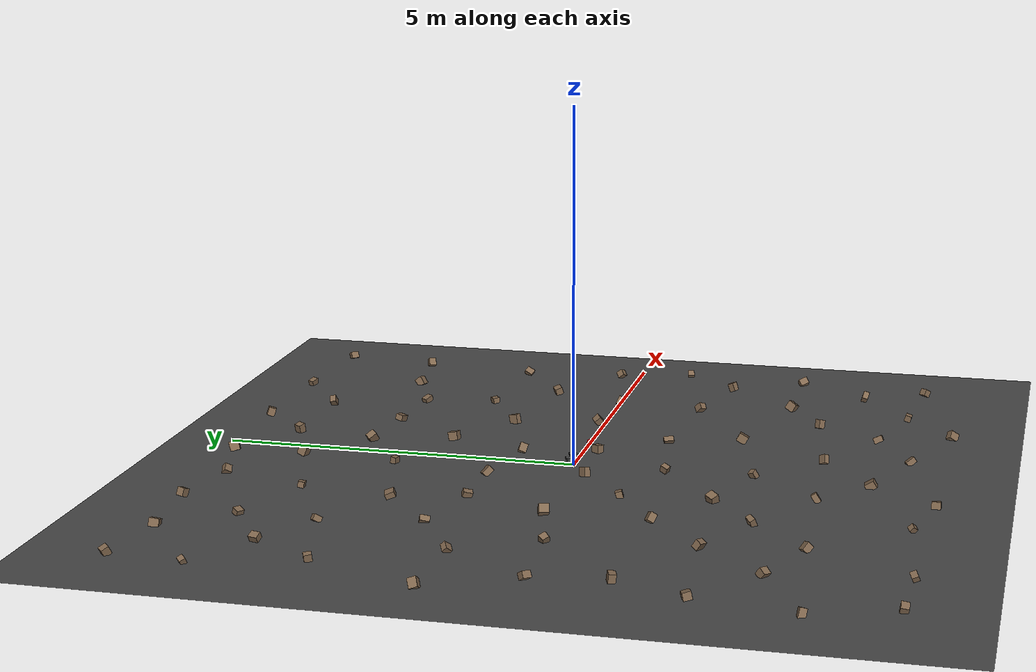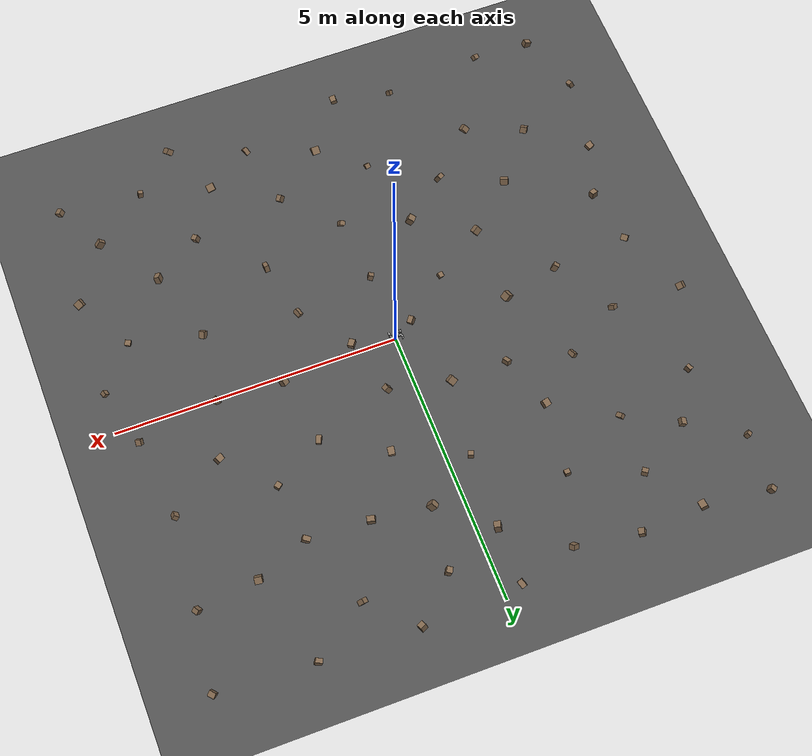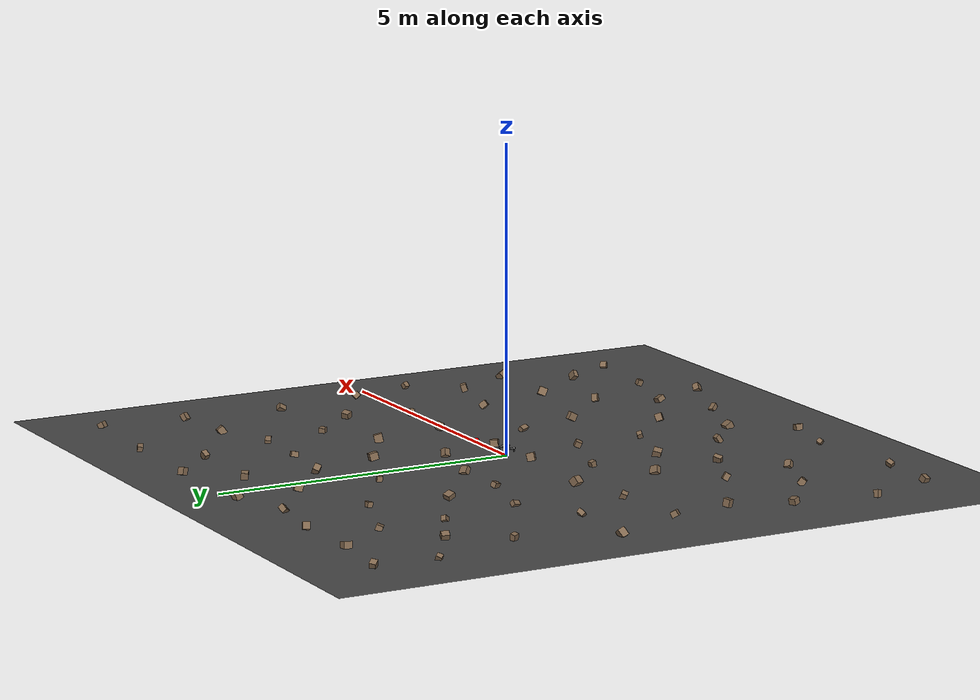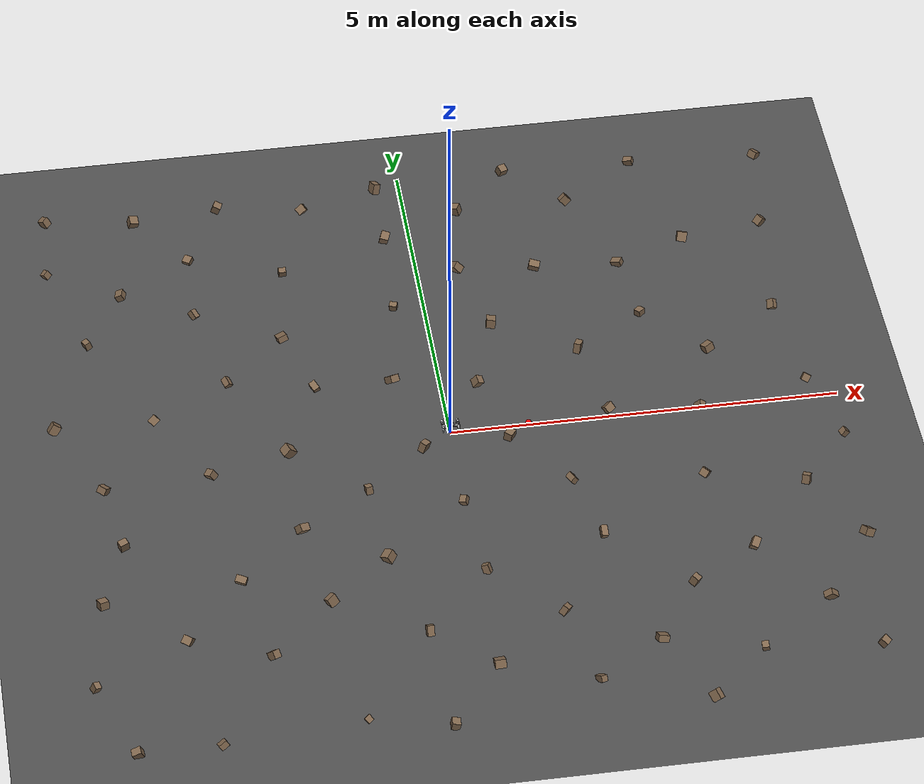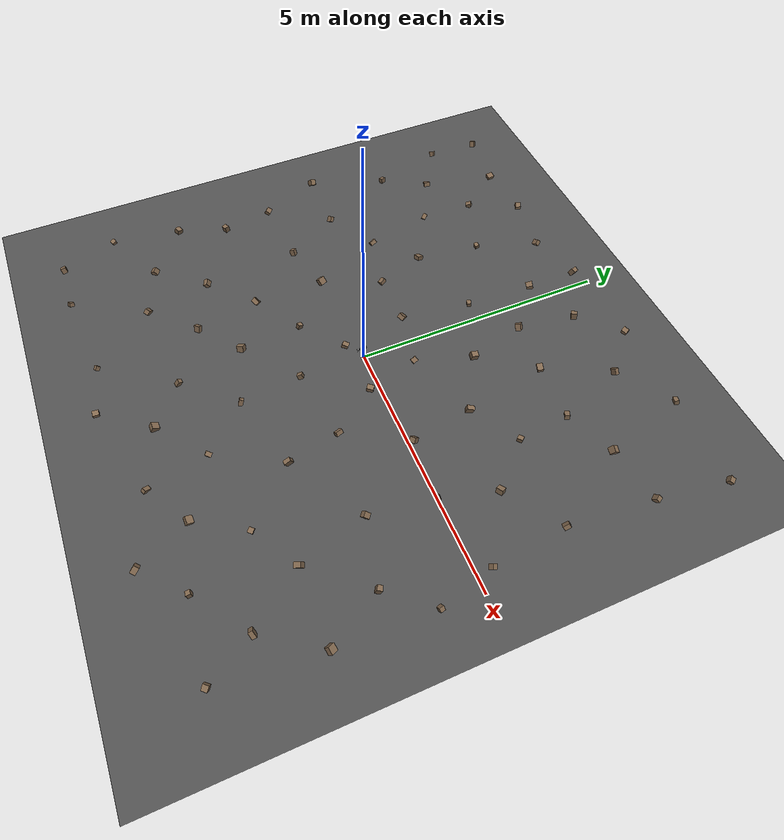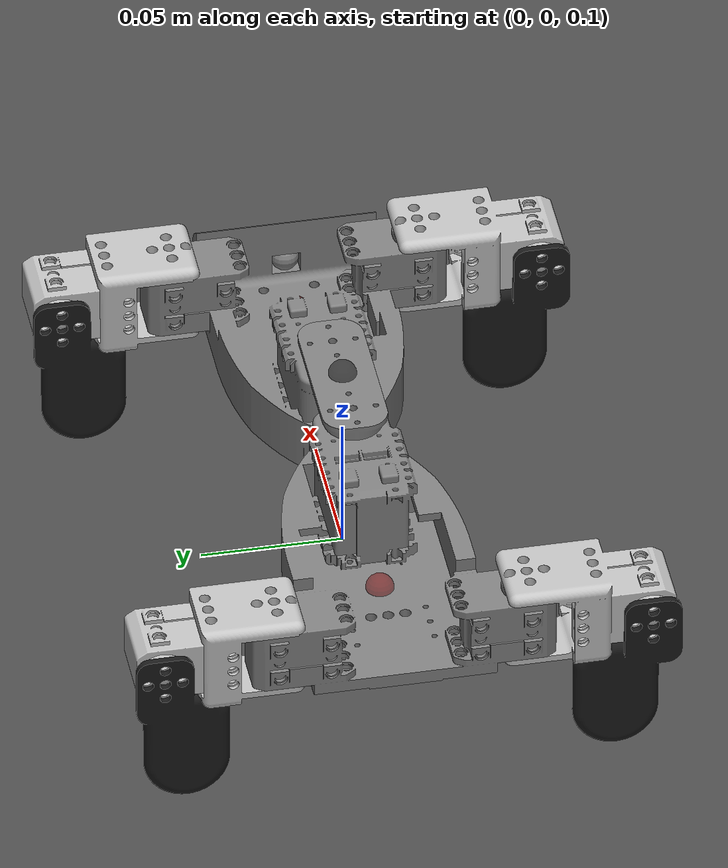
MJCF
<?xml version='1.0' encoding='utf-8'?>
<mujoco model="salamander_description">
  <include file="C:\Users\kevin\college_classes\SophomoreSpring\MiniRO\mujoco_box\assets\experiments\setup\../terrain_models\boulder_field_terrain.xml" /><compiler angle="radian" />
  <option solver="Newton" tolerance="1e-6" integrator="implicitfast" gravity="0 0 -9.81" />
  <include file="act2.xml" />

  <visual>
    <rgba haze="0.15 0.25 0.35 1" />
    <quality shadowsize="4096" />
    <map stiffness="700" shadowscale="0.5" fogstart="1" fogend="15" zfar="40" haze="1" />
  </visual>

  <asset>

    <texture type="skybox" builtin="gradient" rgb1="0.3 0.5 0.7" rgb2="0 0 0" width="512" height="512" />
    <texture name="texplane" type="2d" builtin="checker" rgb1=".2 .3 .4" rgb2=".1 0.15 0.2" width="512" height="512" mark="cross" markrgb=".8 .8 .8" />
    <material name="matplane" reflectance="0.3" texture="texplane" texrepeat="10 10" texuniform="true" />
    <material name="slope_mat" reflectance="0.3" rgba="1 1 0 .25" />

  <mesh file="C:\Users\kevin\college_classes\SophomoreSpring\MiniRO\mujoco_box\assets\experiments\setup\..\model_assets\salamander\meshes\body_front_link.STL" name="body_front_link" /><mesh file="C:\Users\kevin\college_classes\SophomoreSpring\MiniRO\mujoco_box\assets\experiments\setup\..\model_assets\salamander\meshes\body_rear_link.STL" name="body_rear_link" /><mesh file="C:\Users\kevin\college_classes\SophomoreSpring\MiniRO\mujoco_box\assets\experiments\setup\..\model_assets\salamander\meshes\dummy_base_link.STL" name="dummy_base_link" /><mesh file="C:\Users\kevin\college_classes\SophomoreSpring\MiniRO\mujoco_box\assets\experiments\setup\..\model_assets\salamander\meshes\leg1_link.STL" name="leg1_link" /><mesh file="C:\Users\kevin\college_classes\SophomoreSpring\MiniRO\mujoco_box\assets\experiments\setup\..\model_assets\salamander\meshes\leg2_link.STL" name="leg2_link" /><mesh file="C:\Users\kevin\college_classes\SophomoreSpring\MiniRO\mujoco_box\assets\experiments\setup\..\model_assets\salamander\meshes\leg3_link.STL" name="leg3_link" /><mesh file="C:\Users\kevin\college_classes\SophomoreSpring\MiniRO\mujoco_box\assets\experiments\setup\..\model_assets\salamander\meshes\leg4_link.STL" name="leg4_link" /><mesh file="C:\Users\kevin\college_classes\SophomoreSpring\MiniRO\mujoco_box\assets\experiments\setup\..\model_assets\salamander\meshes\shoulder1_link.STL" name="shoulder1_link" /><mesh file="C:\Users\kevin\college_classes\SophomoreSpring\MiniRO\mujoco_box\assets\experiments\setup\..\model_assets\salamander\meshes\shoulder2_link.STL" name="shoulder2_link" /><mesh file="C:\Users\kevin\college_classes\SophomoreSpring\MiniRO\mujoco_box\assets\experiments\setup\..\model_assets\salamander\meshes\shoulder3_link.STL" name="shoulder3_link" /><mesh file="C:\Users\kevin\college_classes\SophomoreSpring\MiniRO\mujoco_box\assets\experiments\setup\..\model_assets\salamander\meshes\shoulder4_link.STL" name="shoulder4_link" /></asset>

  <worldbody>
    <body name="ball" pos="1 0 .04">
      <geom type="sphere" size=".04" rgba="1 0 0 1" />
    </body>
    <light diffuse=".4 .4 .4" specular="0.1 0.1 0.1" pos="0 0 2.0" dir="0 0 -1" castshadow="false" />
    <light directional="true" diffuse=".8 .8 .8" specular="0.2 0.2 0.2" pos="0 0 4" dir="0 0 -1" />
    <geom name="ground" type="plane" size="0 0 1" pos="0 0 0" quat="1 0 0 0" material="matplane" condim="1" />

    <body name="body_rear_link" pos="0 0 0.0856">
      <geom pos="0 0 0.0856" quat="1 0 0 0" type="mesh" mesh="body_rear_link" />
      <joint name="fall" type="free" pos="0 0 0" axis="0 0 1" />
      <site name="torso_sensors" pos="-0.0682 0 .048" rgba="0.5 0 0 .5" />
      <body name="shoulder3_link" pos="-0.10533 0.043967 0.0784">
        <geom type="mesh" rgba="0.75294 0.75294 0.75294 1" mesh="shoulder3_link" />
        <inertial pos="-0.00035612 0.027895 -0.015524" quat="0.830241 0.554769 0.0182893 0.0509566" mass="0.022828" diaginertia="3.78438e-06 3.41587e-06 3.14145e-06" />
        <joint name="shoulder3_joint" type="hinge" pos="0 0 0" axis="0 0 1" range="-1.4 1.4" actuatorfrcrange="-0.39 0.39" frictionloss="0.1" />
        <body name="leg3_link" pos="-0.0174 0.041 -0.0164">
          <inertial pos="0.015303 -0.0075022 -0.031486" quat="0.991718 -0.121381 -0.0411625 0.00821591" mass="0.01174" diaginertia="4.05823e-06 3.86047e-06 1.0964e-06" />
          <joint name="leg3_joint" type="hinge" pos="0 0 0" axis="1 0 0" range="0 1.6" actuatorfrcrange="-0.39 0.39" frictionloss="0.1" />
          <geom type="mesh" rgba="0.10196 0.10196 0.10196 1" mesh="leg3_link" />
        </body>
      </body>
      <body name="shoulder4_link" pos="-0.10533 -0.044033 0.0784">
        <inertial pos="-0.00035261 -0.027895 -0.015524" quat="0.55469 0.830308 -0.0504036 -0.0191768" mass="0.022828" diaginertia="3.78439e-06 3.41596e-06 3.14135e-06" />
        <joint name="shoulder4_joint" type="hinge" pos="0 0 0" axis="0 0 1" range="-1.4 1.4" actuatorfrcrange="-0.39 0.39" frictionloss="0.1" />
        <geom type="mesh" rgba="0.75294 0.75294 0.75294 1" mesh="shoulder4_link" />
        <body name="leg4_link" pos="-0.0174 -0.041 -0.0164">
          <inertial pos="0.015303 0.0075097 -0.031486" quat="0.991713 0.121232 -0.0407594 -0.0121008" mass="0.01174" diaginertia="4.05702e-06 3.85955e-06 1.09592e-06" />
          <joint name="leg4_joint" type="hinge" pos="0 0 0" axis="1 0 0" range="-1.6 0" actuatorfrcrange="-0.39 0.39" frictionloss="0.1" />
          <geom type="mesh" rgba="0.10196 0.10196 0.10196 1" mesh="leg4_link" />
        </body>
      </body>
      <body name="body_front_link" pos="0.0185 0 0.0881">
        <site name="spinal_sensors" pos="-0.0182 0 0" rgba="0 0 0 .5" />
        <site name="front_sensors" pos="0.0682 0 -.04" rgba="0.5 0 0 .5" />
        <inertial pos="0.056805 2.3159e-05 -0.033606" quat="0.4638 0.4638 -0.53375 0.53375" mass="0.081874" diaginertia="3.73585e-05 2.58825e-05 1.9334e-05" />
        <joint name="spinal_joint" type="hinge" pos="0 0 0" axis="0 0 1" range="-1.5707 1.5707" actuatorfrcrange="-1.52 1.52" frictionloss="0.5" />
        <geom type="mesh" mesh="body_front_link" />
        <site name="tip_sensors" pos="0.09 0 -0.033" />
        <body name="shoulder1_link" pos="0.073327 0.044033 -0.0097">
          <inertial pos="-0.00035612 0.027895 -0.015524" quat="0.830241 0.554769 0.0182893 0.0509566" mass="0.022828" diaginertia="3.78438e-06 3.41587e-06 3.14145e-06" />
          <joint name="shoulder1_joint" type="hinge" pos="0 0 0" axis="0 0 1" range="-1.4 1.4" actuatorfrcrange="-0.39 0.39" frictionloss="0.1" />
          <geom type="mesh" rgba="0.75294 0.75294 0.75294 1" mesh="shoulder1_link" />
          <body name="leg1_link" pos="-0.0174 0.041 -0.0164">
            <inertial pos="0.015303 -0.0075022 -0.031486" quat="0.991718 -0.121381 -0.0411625 0.00821591" mass="0.01174" diaginertia="4.05823e-06 3.86047e-06 1.0964e-06" />
            <joint name="leg1_joint" type="hinge" pos="0 0 0" axis="1 0 0" range="0 1.6" actuatorfrcrange="-0.39 0.39" frictionloss="0.1" />
            <geom type="mesh" rgba="0.10196 0.10196 0.10196 1" mesh="leg1_link" />
          </body>
        </body>
        <body name="shoulder2_link" pos="0.073327 -0.043967 -0.0097">
          <inertial pos="-0.00035261 -0.027895 -0.015524" quat="0.55469 0.830308 -0.0504036 -0.0191768" mass="0.022828" diaginertia="3.78439e-06 3.41596e-06 3.14135e-06" />
          <joint name="shoulder2_joint" type="hinge" pos="0 0 0" axis="0 0 1" range="-1.4 1.4" actuatorfrcrange="-0.39 0.39" frictionloss="0.1" />
          <geom type="mesh" rgba="0.75294 0.75294 0.75294 1" mesh="shoulder2_link" />
          <body name="leg2_link" pos="-0.0174 -0.041 -0.0164">
            <inertial pos="0.015303 0.0075097 -0.031486" quat="0.991713 0.121232 -0.0407594 -0.0121008" mass="0.01174" diaginertia="4.05702e-06 3.85955e-06 1.09592e-06" />
            <joint name="leg2_joint" type="hinge" pos="0 0 0" axis="1 0 0" range="-1.6 0" actuatorfrcrange="-0.39 0.39" frictionloss="0.1" />
            <geom type="mesh" rgba="0.10196 0.10196 0.10196 1" mesh="leg2_link" />
          </body>
        </body>
      </body>
    </body>

  </worldbody>

  <sensor>
    <velocimeter name="velocity" site="tip_sensors" />
    <framequat name="spinal_quat" objtype="site" objname="spinal_sensors" reftype="body" refname="body_rear_link" />
    <gyro name="torso_angular_velocity" site="torso_sensors" />
    <velocimeter name="torso_velocity" site="torso_sensors" />
    <velocimeter name="front_velocity" site="front_sensors" />
  </sensor>
</mujoco>

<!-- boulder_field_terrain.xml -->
<mujoco model="rocky_terrain_scene">
    <compiler angle="radian" inertiafromgeom="true" />
    <option timestep="0.002" gravity="0 0 -9.81" />

    <worldbody>
        <light name="sunlight" pos="5 5 5" dir="-1 -1 -1" diffuse="1 1 1" specular="0.5 0.5 0.5" ambient="0.5 0.5 0.5" />

        <geom name="ground_plane" type="plane" size="50 50 0.1" rgba="0.3 0.3 0.3 1" />

        <body name="rocky_terrain_body">

        <geom name="rock1" type="box" size="0.043853821801602785 0.060639639290208464 0.05602136349779619" pos="2.160647646629293 4.22456299904171 0.04987713242187566" quat="0.33927833288281617 0.10461920358835411 0.2084756053692005 0.3476268581596291" rgba="0.5 0.4 0.3 1" friction="0.7732341014625038 0.932433615481447 0.8072531281551533" /><geom name="rock2" type="box" size="0.05414276227779244 0.052384297007154475 0.05878092148138053" pos="2.05076199082574 0.10855953183192124 0.05681558277090658" quat="0.3434154641807505 0.03798896063504085 0.3357963751398389 0.2827992000443697" rgba="0.5 0.4 0.3 1" friction="0.8064512524133735 0.9984369287871199 0.8361095400639541" /><geom name="rock3" type="box" size="0.0685415117361759 0.05976650737385847 0.0509263758907643" pos="2.4792696112579895 -4.993542088926982 0.02962240915355816" quat="0.011250825472890452 0.31598145594362165 0.36628973997917724 0.30647797860431053" rgba="0.5 0.4 0.3 1" friction="0.870368892713995 0.9211217134250818 0.8045704804291002" /><geom name="rock4" type="box" size="0.04919458807518518 0.06566848922245452 0.05182634235422405" pos="-3.094651439417425 -0.33412643548178345 0.02249273805581889" quat="0.3649195467460633 0.3177877608119277 0.058776488225633014 0.25851620421637594" rgba="0.5 0.4 0.3 1" friction="0.8776599171507683 0.9240486269376021 0.9155458032251842" /><geom name="rock5" type="box" size="0.06910645207091379 0.06206259795184478 0.040859764806773974" pos="1.6120493780869518 -2.09438205962262 0.059142835238184366" quat="0.1745134324784194 0.3123558443510316 0.19886376187576862 0.31426696129478043" rgba="0.5 0.4 0.3 1" friction="0.8875460896439653 0.9683643109337081 0.9247647899947249" /><geom name="rock6" type="box" size="0.040486024868399285 0.04258509589261991 0.040593045308615905" pos="-1.6821775466429392 -4.772652370815496 0.03704874636612837" quat="0.39759976610018855 0.02958660714676698 0.3056951747511572 0.26711845200188733" rgba="0.5 0.4 0.3 1" friction="0.750664337221701 0.9843189574572352 0.9482790891771469" /><geom name="rock7" type="box" size="0.05382063278406617 0.05320089955565819 0.04421789421132908" pos="-2.9665552866807623 3.762082966086327 0.023988265847822425" quat="0.03511821385715542 0.20171705219706343 0.644896427061065 0.11826830688471625" rgba="0.5 0.4 0.3 1" friction="0.8145563965353889 0.9129223356900046 0.8699423597228008" /><geom name="rock8" type="box" size="0.041698312689840804 0.06187681845436866 0.049180563253098004" pos="4.50197460922886 1.7623944475023565 0.03610965124208783" quat="0.5523858532117744 0.1509866206044172 0.2511654473233008 0.04546207886050765" rgba="0.5 0.4 0.3 1" friction="0.7665580092726315 0.961492180210848 0.910334226964469" /><geom name="rock9" type="box" size="0.0699220073576851 0.041405529545056954 0.04048973588568107" pos="1.3849725406179934 -1.0665476967589171 0.02850455854957698" quat="0.2876641007089788 0.11622533423351832 0.20869463182343878 0.38741593323406415" rgba="0.5 0.4 0.3 1" friction="0.8844526266541806 0.9529029650674928 0.9323809829237759" /><geom name="rock10" type="box" size="0.06987162739846753 0.054243297526459754 0.06914668337433821" pos="0.0006672073603750661 -4.077906468031768 0.021014719449722837" quat="0.31732588421164504 0.17162479728444405 0.32068318372277854 0.19036613478113235" rgba="0.5 0.4 0.3 1" friction="0.8654801327783166 0.9089046377180435 0.941795425964826" /><geom name="rock11" type="box" size="0.05741629726269751 0.04563032079139399 0.06838338693803704" pos="-2.925971886694816 -2.262890252313973 0.05255163423298824" quat="0.37970986686914093 0.2045876339506456 0.3911451712982648 0.024557327881948615" rgba="0.5 0.4 0.3 1" friction="0.7658890887548487 0.9131293743378066 0.920028745295681" /><geom name="rock12" type="box" size="0.05476022738759206 0.062446404837481886 0.04913049483667202" pos="0.4681662375305855 0.8434080051460215 0.05442781904244423" quat="0.09713845293291536 0.32345541683290074 0.3222203145542713 0.2571858156799126" rgba="0.5 0.4 0.3 1" friction="0.8744808911753371 0.9791746583867476 0.8342695695818341" /><geom name="rock13" type="box" size="0.06216427440291437 0.041470091216600925 0.06960344685274189" pos="4.173517004681964 -3.570902427660351 0.05469259005042576" quat="0.245860169956722 0.02534346451327586 0.6283948787689216 0.10040148676108042" rgba="0.5 0.4 0.3 1" friction="0.8687504799151304 0.8733579237437841 0.8588576712582509" /><geom name="rock14" type="box" size="0.0512699794434396 0.048651965556602526 0.04508477300545788" pos="-0.020109137144366684 -1.2806085418793547 0.056191772615846125" quat="0.29767858706738254 0.3031305044605786 0.1095397277055546 0.2896511807664842" rgba="0.5 0.4 0.3 1" friction="0.7540437151575251 0.9427866286163602 0.8240594941813054" /><geom name="rock15" type="box" size="0.04610135827613138 0.052878036119748145 0.06025287598506379" pos="-1.3568468098545172 4.552923192567578 0.03357943882597714" quat="0.46098886477277545 0.04491516775978427 0.27355386614301447 0.2205421013244258" rgba="0.5 0.4 0.3 1" friction="0.8376527814096748 0.8539212245023116 0.8104458690843527" /><geom name="rock16" type="box" size="0.05692139015920557 0.052429471621167706 0.05891373202258214" pos="-4.642274759062742 -2.4124706338782365 0.04205061311577134" quat="0.22353316471990825 0.17956243904550284 0.3346278580855585 0.2622765381490305" rgba="0.5 0.4 0.3 1" friction="0.7976079571368718 0.9123927175624597 0.9099276214587213" /><geom name="rock17" type="box" size="0.06425292063937875 0.05811647679134116 0.06437708458418474" pos="3.583882190537869 3.2749578401085984 0.02520872829612538" quat="0.04907793277532361 0.07318435623800035 0.21491704144219456 0.6628206695444815" rgba="0.5 0.4 0.3 1" friction="0.843487596214182 0.9659729948584901 0.8559036112697449" /><geom name="rock18" type="box" size="0.06918782414349939 0.060056466542846604 0.05627354615294223" pos="-3.6130800722350376 4.635659346450526 0.023179852386012875" quat="0.4209665230542065 0.08879149936202878 0.03354984685333554 0.4566921307304292" rgba="0.5 0.4 0.3 1" friction="0.799808504233931 0.9281424000541973 0.929739719978319" /><geom name="rock19" type="box" size="0.04757484851928375 0.04502146103114158 0.04319011418420701" pos="3.212746945934734 -4.301929292802468 0.05377826018909457" quat="0.46623903872672584 0.07816512851336187 0.40032070252568414 0.05527513023422823" rgba="0.5 0.4 0.3 1" friction="0.8143005734616778 0.8569104694672407 0.9063056861106036" /><geom name="rock20" type="box" size="0.04208627349383286 0.05975575006155006 0.041402021086536504" pos="-2.9988991360452752 2.684150490569559 0.024996304046483904" quat="0.5461842919349361 0.1290268294385875 0.13164543333586684 0.19314344529060948" rgba="0.5 0.4 0.3 1" friction="0.8624072858378814 0.9353521133097273 0.9288581830230243" /><geom name="rock21" type="box" size="0.043444989383793695 0.0402204859084211 0.055806516709261476" pos="-3.4403993022371235 -4.9402077560502615 0.05242208878626915" quat="0.3195039242712905 0.10077373669353153 0.26612706790135726 0.3135952711338207" rgba="0.5 0.4 0.3 1" friction="0.7643132296119123 0.9356353957535227 0.8407873425155308" /><geom name="rock22" type="box" size="0.05397139693017408 0.04625640176752379 0.06116713676019947" pos="-4.456430230833352 -0.43180728157957393 0.05013198256310543" quat="0.3717254425768542 0.31730554532919913 0.25666275224277 0.05430625985117664" rgba="0.5 0.4 0.3 1" friction="0.8684502806229368 0.9125075963179681 0.9447355899389647" /><geom name="rock23" type="box" size="0.06610784462450046 0.04044640036898337 0.041696938739947044" pos="-2.7122846730920935 1.33148873646247 0.023241629612237996" quat="0.27547245392347025 0.1692281159442585 0.13539006370545797 0.4199093664268132" rgba="0.5 0.4 0.3 1" friction="0.7531879167239197 0.8748554129312618 0.9339779050802022" /><geom name="rock24" type="box" size="0.04151239440213277 0.052389566137122714 0.05195952274872104" pos="-4.432040365850835 2.292670843129903 0.04110517051725393" quat="0.42365821428656636 0.39035574711070997 0.039382572512440525 0.1466034660902831" rgba="0.5 0.4 0.3 1" friction="0.7872519295524801 0.885295114064607 0.9268474867761347" /><geom name="rock25" type="box" size="0.04833719080957537 0.06251387886829207 0.0577106475225786" pos="-4.299865466847061 -1.4510408873676548 0.055966059019377165" quat="0.19694946831473747 0.20561637883373873 0.269217427376567 0.3282167254749567" rgba="0.5 0.4 0.3 1" friction="0.8327677915406425 0.8523065585963219 0.9206225226632636" /><geom name="rock26" type="box" size="0.05348055179577833 0.046076243160331716 0.04454467998363869" pos="-1.1694424987783658 -0.8869512941646605 0.025226738670394173" quat="0.019848281037418387 0.42834022798906984 0.10291252879500151 0.4488989621785103" rgba="0.5 0.4 0.3 1" friction="0.8655549526947047 0.9060387484384596 0.8088673177034804" /><geom name="rock27" type="box" size="0.04286253500966034 0.061096512866998215 0.04452730688262134" pos="3.1461779478444853 4.901935186749041 0.03460981415758363" quat="0.04846405197160055 0.5179579775835065 0.3505588799420009 0.083019090502892" rgba="0.5 0.4 0.3 1" friction="0.7717678080850532 0.9613006766203365 0.9019915263328471" /><geom name="rock28" type="box" size="0.04098665269331823 0.0676940208605297 0.06491076744888041" pos="-1.873194003761316 -2.752176881710102 0.03282671155813744" quat="0.27122620948457676 0.07551099795618926 0.3225072000297369 0.33075559252949704" rgba="0.5 0.4 0.3 1" friction="0.850140296276624 0.9115121252664802 0.8481029891052373" /><geom name="rock29" type="box" size="0.057606812199961346 0.06913458405098855 0.058604823079758686" pos="-4.977832975365658 0.7808560715492519 0.028612476796646805" quat="0.21614697354513218 0.28208531303618795 0.38263197273799854 0.11913574068068136" rgba="0.5 0.4 0.3 1" friction="0.8818267209871242 0.8503194860533388 0.8973237588750845" /><geom name="rock30" type="box" size="0.04008120702615002 0.055391632373745586 0.05713197846000726" pos="-3.710133546171004 0.7497291959244325 0.03406654945745188" quat="0.4085222709462414 0.029440568177505358 0.28496289727427965 0.2770742636019736" rgba="0.5 0.4 0.3 1" friction="0.8218960009017762 0.8807596186675748 0.8021288391331125" /><geom name="rock31" type="box" size="0.06683420306858576 0.06495277190276279 0.05559468720540851" pos="-0.33522585656821224 3.804696381631123 0.048150517543637486" quat="0.3844465156002158 0.1437922225645004 0.4676942678336071 0.004066994001676769" rgba="0.5 0.4 0.3 1" friction="0.8883006698307621 0.9034591928828531 0.8924805420673946" /><geom name="rock32" type="box" size="0.040588482200641 0.04552563169087353 0.06337514429619354" pos="3.219813946603143 0.021055697852967015 0.020939156660605224" quat="0.38356223626564745 0.18841079830636684 0.05370499629105529 0.3743219691369304" rgba="0.5 0.4 0.3 1" friction="0.8899513219553012 0.8759645516106508 0.8264799055735439" /><geom name="rock33" type="box" size="0.05315541551585743 0.04066421181499609 0.04848569887976946" pos="2.7616416742039194 1.8620227667549347 0.05037187471220835" quat="0.39011786455943187 0.34725716432826575 0.12351643020275802 0.13910854090954433" rgba="0.5 0.4 0.3 1" friction="0.8201176986015216 0.8520052439737107 0.9331637278652843" /><geom name="rock34" type="box" size="0.06434307278831305 0.06984423445271026 0.0528081898932445" pos="0.5212388227036406 3.0809668481150236 0.04315793245543928" quat="0.2849135378237753 0.005568262453588341 0.3249265188699143 0.38459168085272205" rgba="0.5 0.4 0.3 1" friction="0.887364618718427 0.8507396488309678 0.8120036612080923" /><geom name="rock35" type="box" size="0.04959598886147196 0.06150775021977083 0.04800027345334622" pos="2.5780548539047787 -3.079776803249424 0.05871416562979438" quat="0.07034075052551786 0.2168635063281712 0.3663802244135367 0.34641551873277426" rgba="0.5 0.4 0.3 1" friction="0.7581080900132856 0.9801025706786124 0.8123560441859166" /><geom name="rock36" type="box" size="0.06780602911521243 0.06392883396614985 0.06818973477702607" pos="-2.0843226615673913 -0.0800690744859045 0.05307570034356701" quat="0.11175658768164762 0.29180881202125675 0.4116033059725316 0.18483129432456397" rgba="0.5 0.4 0.3 1" friction="0.8594668217870844 0.8713617196617812 0.8641433431863492" /><geom name="rock37" type="box" size="0.04793780795409209 0.06229579964635561 0.050152038506858176" pos="4.2903762700245505 -1.529316709245272 0.054706989182096946" quat="0.35215288738171996 0.26638568851811184 0.2371004371577054 0.14436098694246285" rgba="0.5 0.4 0.3 1" friction="0.7685140148478983 0.8537495207707583 0.9103858754124721" /><geom name="rock38" type="box" size="0.05571086395487056 0.06573192953631937 0.05037981185516763" pos="0.688857797606973 4.232988497741207 0.04837507643114479" quat="0.3483422157363562 0.2854611423829209 0.1503546028878523 0.21584203899287052" rgba="0.5 0.4 0.3 1" friction="0.7861964507152234 0.9927978147556851 0.9298694011155333" /><geom name="rock39" type="box" size="0.06972089324880408 0.043352087194856934 0.056526838683066453" pos="1.5448118533450064 2.9649721037293837 0.05143125671449078" quat="0.025315835131536516 0.10363524550390282 0.3894717498408637 0.48157716952369706" rgba="0.5 0.4 0.3 1" friction="0.7622991497557465 0.9974795111463732 0.8572965455752858" /><geom name="rock40" type="box" size="0.049108226700639586 0.04248861070720369 0.05727989886290134" pos="-0.40146390837108026 2.4554316741822575 0.020088057767641804" quat="0.004174644231084061 0.13717524695797087 0.8117316215149949 0.04691848729595002" rgba="0.5 0.4 0.3 1" friction="0.821952777576652 0.8901158519167647 0.9226619975210343" /><geom name="rock41" type="box" size="0.06873579685718961 0.04602258576348401 0.06689493530916336" pos="-0.6068211268307087 1.0739825289098457 0.028484835175909294" quat="0.27150066184105787 0.07252873482479498 0.43747642298280426 0.218494180351343" rgba="0.5 0.4 0.3 1" friction="0.7985636817880842 0.8769219870788406 0.8690170800285901" /><geom name="rock42" type="box" size="0.06593688259088719 0.040408520574272605 0.0645230141885921" pos="-1.9203230218346046 2.041901360751826 0.05827539763920678" quat="0.29066659447483945 0.13899619551445794 0.29405326483668315 0.27628394517401944" rgba="0.5 0.4 0.3 1" friction="0.8684505415645204 0.8691795215382708 0.8325814997219092" /><geom name="rock43" type="box" size="0.04309465463233214 0.04185674808781738 0.0484477891425127" pos="-1.7618510471646678 3.327530213661202 0.04424105992691571" quat="0.22005336435955147 0.27045782918839645 0.243382619765182 0.26610618668687" rgba="0.5 0.4 0.3 1" friction="0.8347275141794102 0.9900509372038321 0.9308358179921521" /><geom name="rock44" type="box" size="0.053592320483041245 0.04895707676598286 0.052436289445246934" pos="4.653878677186098 -4.436598679480764 0.04626785682018926" quat="0.25461557330133316 0.43093237011528396 0.2055544154934473 0.10889764108993556" rgba="0.5 0.4 0.3 1" friction="0.8032801822299798 0.9988320032198056 0.8393183748471706" /><geom name="rock45" type="box" size="0.040588354004436535 0.046363803820928425 0.04827457189301959" pos="-4.846274253490652 3.7522041483867277 0.021311737068022696" quat="0.17350964720460574 0.24029439761885826 0.5429936966148788 0.04320225856165703" rgba="0.5 0.4 0.3 1" friction="0.7526093622101787 0.9589423737115419 0.9458365779697929" /><geom name="rock46" type="box" size="0.04731499449705898 0.0646548063931353 0.041284584255872614" pos="-4.850937437198772 -3.7819704265021503 0.023296216705572883" quat="0.13311207688522045 0.27404150049176546 0.30858724222663225 0.28425918039638187" rgba="0.5 0.4 0.3 1" friction="0.7826030267409304 0.92985704342723 0.8283485851752442" /><geom name="rock47" type="box" size="0.062134667519900155 0.05013672153917219 0.052549513624792404" pos="3.047711077120125 -1.2360311364762797 0.0516503778491728" quat="0.34258967764863885 0.3146046960848553 0.32624162941035506 0.01656399685615076" rgba="0.5 0.4 0.3 1" friction="0.7827803690358865 0.9863583489424919 0.8942836195207027" /><geom name="rock48" type="box" size="0.042013901763014574 0.06187727891295771 0.04530577075962564" pos="0.08478534812617866 -2.482080190522601 0.022992705590609935" quat="0.3951732184978289 0.19661965268611212 0.20261904871250494 0.20558808010355406" rgba="0.5 0.4 0.3 1" friction="0.7520303447988993 0.912969706356342 0.8035403145998264" /><geom name="rock49" type="box" size="0.05402099925496294 0.06035346993960691 0.044830289409966015" pos="4.6639511206555735 3.424777963458707 0.0391984100129789" quat="0.09276504384971385 0.25613765858026655 0.43191897222684167 0.21917832534317802" rgba="0.5 0.4 0.3 1" friction="0.8341289503023337 0.9389295460587728 0.8051867523619716" /><geom name="rock50" type="box" size="0.06946448931390609 0.0598889774997863 0.058780819978579715" pos="0.8118502250847071 1.9449487289404468 0.055025623200024645" quat="0.28010754070581395 0.2567196593335018 0.26924056399873586 0.19393223596194833" rgba="0.5 0.4 0.3 1" friction="0.8931386360230775 0.8723078071327139 0.8196809183484478" /><geom name="rock51" type="box" size="0.05355121758303415 0.05765458740005743 0.06031497865625972" pos="-3.67875843607841 -3.167236282167376 0.028125304543338777" quat="0.2606043902095395 0.406637183053794 0.06261462746482112 0.2701437992718454" rgba="0.5 0.4 0.3 1" friction="0.7855987001489422 0.9362118960881034 0.9104861215258648" /><geom name="rock52" type="box" size="0.05740575721739438 0.061138954010236016 0.04173129703731882" pos="0.9245809515043657 -3.3362649784986975 0.045495152176695426" quat="0.31366690701744493 0.369706955552216 0.25685082687065947 0.059775310559679586" rgba="0.5 0.4 0.3 1" friction="0.8351325533177777 0.89631397921113 0.9276056808587386" /><geom name="rock53" type="box" size="0.05040179753464377 0.06149066353970949 0.05284910088603449" pos="-2.674340603009422 -3.5552781515427 0.02919608953429126" quat="0.026401002820654308 0.3396699721209056 0.2819328933533553 0.35199613170508476" rgba="0.5 0.4 0.3 1" friction="0.8044423214782065 0.9241971946258616 0.8461313117307457" /><geom name="rock54" type="box" size="0.05182039879619997 0.047615675878748036 0.049082862380822566" pos="4.656212641368533 0.3045451714128635 0.049131153524902146" quat="0.29910709572353195 0.2723949790192446 0.3592852865968565 0.06921263866036702" rgba="0.5 0.4 0.3 1" friction="0.8041340340173031 0.9001623893186523 0.8888741901804225" /><geom name="rock55" type="box" size="0.04816103393506783 0.06099967335144644 0.06886225175620944" pos="-2.077573672854042 -1.4896489744199828 0.05882033224337699" quat="0.07116926905714145 0.3285709546463382 0.29861137873689625 0.30164839755962414" rgba="0.5 0.4 0.3 1" friction="0.8461099352183679 0.8771024494830666 0.827391388687716" /><geom name="rock56" type="box" size="0.04965556702820183 0.049906750372201464 0.06046732765624903" pos="4.86151509728794 4.8051290763662 0.022605340607351625" quat="0.4012013470001954 0.3380609480371407 0.22703210904995785 0.033705595912706054" rgba="0.5 0.4 0.3 1" friction="0.865145931426697 0.9703340303669232 0.875428697464218" /><geom name="rock57" type="box" size="0.06439930659691825 0.051877949440492184 0.06705940460061706" pos="4.849877593517203 -2.5482148522798154 0.04047971134934558" quat="0.20269116849345964 0.2131669325137172 0.42249242065492526 0.16164947833789783" rgba="0.5 0.4 0.3 1" friction="0.8909263883676917 0.9657840139722074 0.8994570964660376" /><geom name="rock58" type="box" size="0.054656899505687744 0.05287715035692554 0.06449913862499577" pos="3.512712286843472 1.0600137471571163 0.048130486566859344" quat="0.2532675750456367 0.11892903850728621 0.32079354993970816 0.30700983650736896" rgba="0.5 0.4 0.3 1" friction="0.8642690747114788 0.995225456120876 0.8555627335915064" /><geom name="rock59" type="box" size="0.04196836816558652 0.04078087125906209 0.06797571783963545" pos="1.166452466724622 -4.508965660113878 0.022478950943289427" quat="0.5361799110130888 0.2726640671327487 0.10237369360803035 0.08878232824613212" rgba="0.5 0.4 0.3 1" friction="0.7799973246145879 0.87548249691919 0.8188000189298384" /><geom name="rock60" type="box" size="0.06952330433260497 0.06963009525872194 0.04408399105099779" pos="1.8583016855294057 1.3187839067723282 0.04415025137027595" quat="0.32138264104495917 0.2851622991948261 0.238930427099651 0.15452463266056368" rgba="0.5 0.4 0.3 1" friction="0.8327694025030781 0.8922951397811496 0.890979857552688" /><geom name="rock61" type="box" size="0.06697122878397879 0.041893039814036116 0.04484394370508772" pos="-0.7572038155456582 -3.4349736551862664 0.03694745905669562" quat="0.08281082709834577 0.3987692509504842 0.14810443553700423 0.37031548641416573" rgba="0.5 0.4 0.3 1" friction="0.835238897158118 0.9391046784684346 0.82833451147063" /><geom name="rock62" type="box" size="0.04734902915313865 0.06649602833068342 0.06911584462622294" pos="3.429488235262637 -2.5570930676203876 0.0474619670766305" quat="0.04100145431472079 0.14666112459315875 0.30394650829765624 0.5083909127944641" rgba="0.5 0.4 0.3 1" friction="0.7872947969515939 0.8990918729795598 0.855550219849631" /><geom name="rock63" type="box" size="0.05095837243707095 0.06098949521544552 0.0554005930776071" pos="-4.452806101172523 -4.9080872880625845 0.029185416455065675" quat="0.04745165447920756 0.40214023891976197 0.42362707469232724 0.12678103190870324" rgba="0.5 0.4 0.3 1" friction="0.8745348243638019 0.921871039663823 0.815061792438925" /><geom name="rock64" type="box" size="0.0626543339468437 0.06610969266859071 0.045084362824371234" pos="-0.37371971385557234 -0.23446202798198001 0.0430971455728594" quat="0.3353493237116399 0.350078793649481 0.21890776623284716 0.09566411640603194" rgba="0.5 0.4 0.3 1" friction="0.7998835050355866 0.980295453711965 0.8043762935319462" /><geom name="rock65" type="box" size="0.06032136614811413 0.06725687176903432 0.06256419817330773" pos="-1.0842531267394628 -2.111736679623053 0.0423674076035781" quat="0.149339835948398 0.21625810091258685 0.6015088435488852 0.032893219590129884" rgba="0.5 0.4 0.3 1" friction="0.8426948950147044 0.8593427492087418 0.8919821146830011" /><geom name="rock66" type="box" size="0.053268470658243146 0.0566412186870313 0.055950798719239" pos="-2.4795180377621664 4.729231797312371 0.0591516465978113" quat="0.0006256701299533549 0.15348561410665196 0.3949522704785108 0.450936445284884" rgba="0.5 0.4 0.3 1" friction="0.7707178211822148 0.9607291778701419 0.9441293254413241" /><geom name="rock67" type="box" size="0.06257005140685866 0.051737234817548064 0.04541914104190243" pos="-3.9154295639130754 3.1692661026101785 0.052472292589241146" quat="0.10585420274618196 0.44738758298662884 0.3492984373545857 0.09745977691260346" rgba="0.5 0.4 0.3 1" friction="0.7517348028928142 0.8567847455976555 0.8030128607211726" /><geom name="rock68" type="box" size="0.06539315774369048 0.05320960364841452 0.05824284647245313" pos="0.7322749193852811 -0.17480618616226096 0.03401891480891093" quat="0.6257493610601511 0.017926847996815747 0.03993216613878952 0.3163916248042436" rgba="0.5 0.4 0.3 1" friction="0.8454541438630284 0.8670799465756001 0.8113561964968223" /><geom name="rock69" type="box" size="0.06777180186807441 0.04296416472503475 0.04720927385032837" pos="2.642871189091225 2.8964326422247177 0.024511463254302025" quat="0.17190908917063663 0.03483602877812661 0.3998248604072613 0.39343002164397545" rgba="0.5 0.4 0.3 1" friction="0.77245776070004 0.9760047899720231 0.8689611903484178" /><geom name="rock70" type="box" size="0.0454180529080023 0.04144423963397932 0.04545967375375054" pos="4.934700541914516 -0.7567954452158308 0.041788743975998646" quat="0.3106987808213973 0.12205307224008198 0.1729302008594885 0.39431794607903226" rgba="0.5 0.4 0.3 1" friction="0.8145204280175287 0.9178064002918751 0.8272950457172359" /><geom name="rock71" type="box" size="0.059716161152735855 0.04938022880194102 0.05237594408752701" pos="-0.6738071301979378 -4.9948486968878125 0.03255799881625439" quat="0.2329100372699585 0.27992467589099246 0.270540985910413 0.21662430092863605" rgba="0.5 0.4 0.3 1" friction="0.8006230728927736 0.9345271389400519 0.8876867274848288" /><geom name="rock72" type="box" size="0.044114242799424275 0.04309172477126501 0.06430274484918293" pos="-1.610920604817788 1.0727262348230981 0.03519517451281633" quat="0.33901454493583894 0.48286586998385816 0.03237361383010446 0.1457459712501985" rgba="0.5 0.4 0.3 1" friction="0.8583047036496572 0.8687690236529965 0.8442964622358756" /><geom name="rock73" type="box" size="0.053867074821667 0.059124008899449805 0.05106769025302762" pos="-4.77968384752716 4.786259766270401 0.03906885900006542" quat="0.25074479911996167 0.044356929000611035 0.35610849206087286 0.3487897798185544" rgba="0.5 0.4 0.3 1" friction="0.7974419969319825 0.9535434502565184 0.9101797455590424" /><geom name="rock74" type="box" size="0.042911103301922604 0.06570059956346191 0.06971711347861753" pos="2.0071606034661125 -3.9814346713397475 0.05775704987156466" quat="0.07683015067217065 0.45446567944540345 0.11044074194067748 0.35826342794174837" rgba="0.5 0.4 0.3 1" friction="0.848335756625114 0.8545831960195845 0.9482146871979282" /><geom name="rock75" type="box" size="0.06839489047691073 0.06942796857577968 0.04779138639038471" pos="-0.3318351293034816 4.843667881048784 0.03945875726043152" quat="0.21623589345830863 0.2058428367573727 0.36610912884083335 0.21181214094348527" rgba="0.5 0.4 0.3 1" friction="0.8547383442230079 0.9384906385560189 0.8603655973339381" /><geom name="rock76" type="box" size="0.05328530992546035 0.06082854875292884 0.05592305069862196" pos="1.4182637831440568 4.947365904647704 0.04433576136910464" quat="0.13705124949981895 0.2581027187149161 0.2825255470750872 0.32232048471017766" rgba="0.5 0.4 0.3 1" friction="0.8472629948606649 0.8944381474098171 0.8672789142079265" /></body>
    </worldbody>
</mujoco>

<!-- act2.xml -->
<mujoco model="motors">
  <!-- Existing XML content -->
  <compiler angle="radian"/>
  <actuator>
    <position joint="spinal_joint" kp=".5" ctrlrange="-1.57 1.57" />
    <position joint="shoulder1_joint" kp=".6" ctrlrange="-1.57 1.57" />
    <position joint="leg1_joint" kp=".5" ctrlrange="-1.57 1.57" />
    <position joint="shoulder2_joint" kp=".6" ctrlrange="-1.57 1.57" />
    <position joint="leg2_joint" kp=".5" ctrlrange="-1.57 1.57" />
    <position joint="shoulder3_joint" kp=".4" ctrlrange="-1.57 1.57" />
    <position joint="leg3_joint" kp=".5" ctrlrange="-1.57 1.57" />
    <position joint="shoulder4_joint" kp=".4" ctrlrange="-1.57 1.57" />
    <position joint="leg4_joint" kp=".5" ctrlrange="-1.57 1.57" />
  </actuator>
</mujoco>
